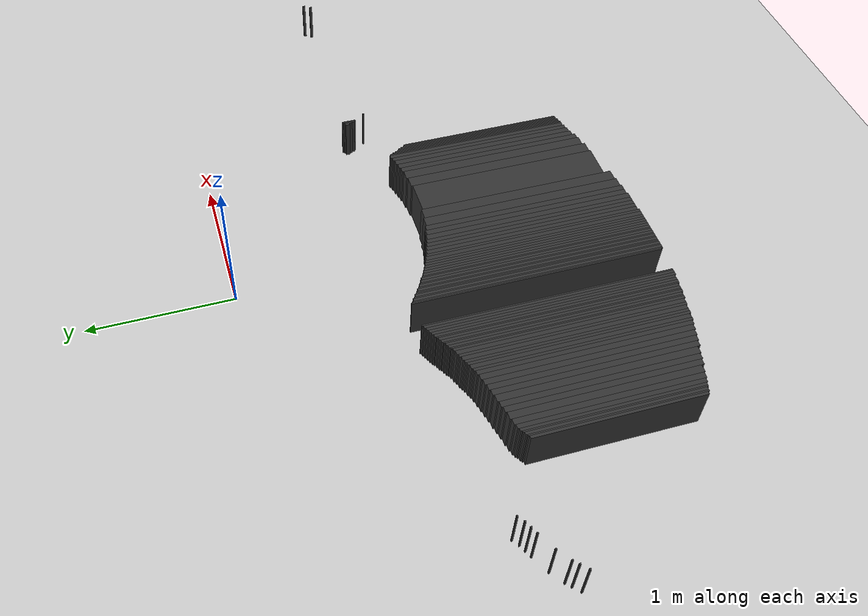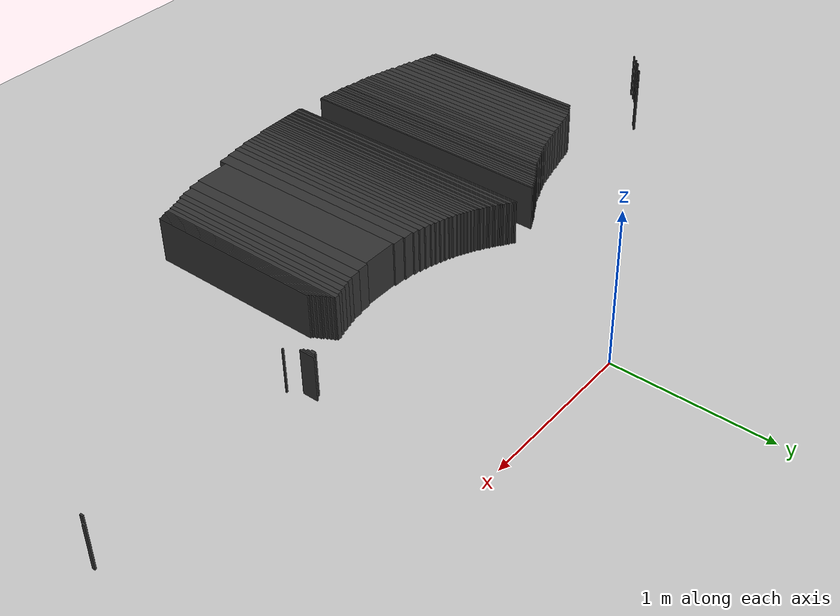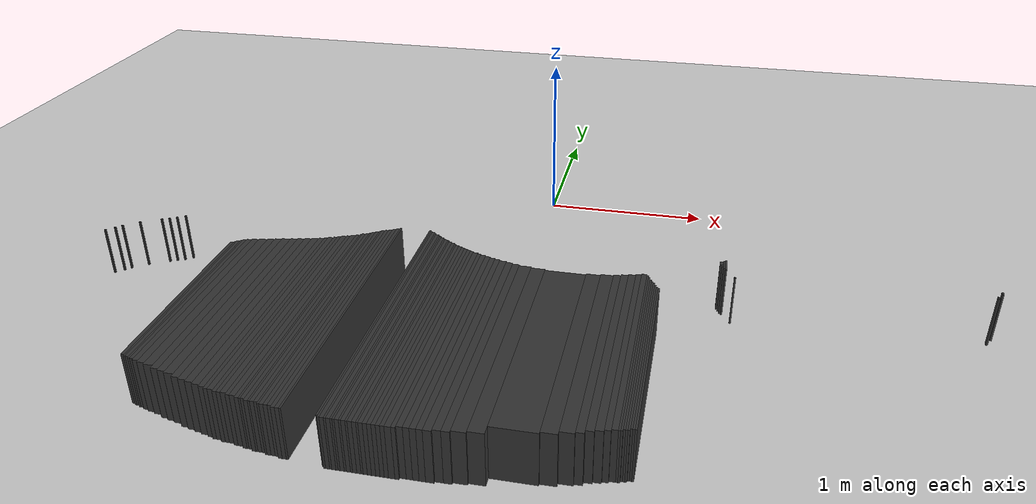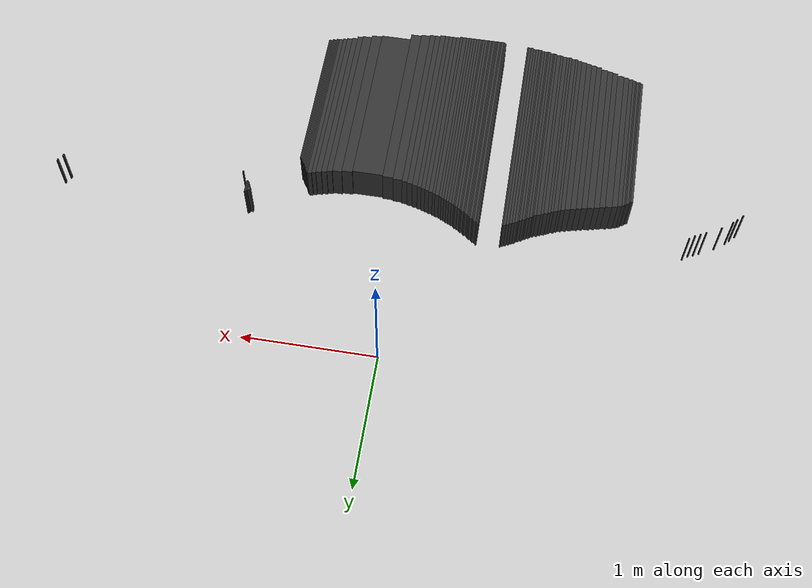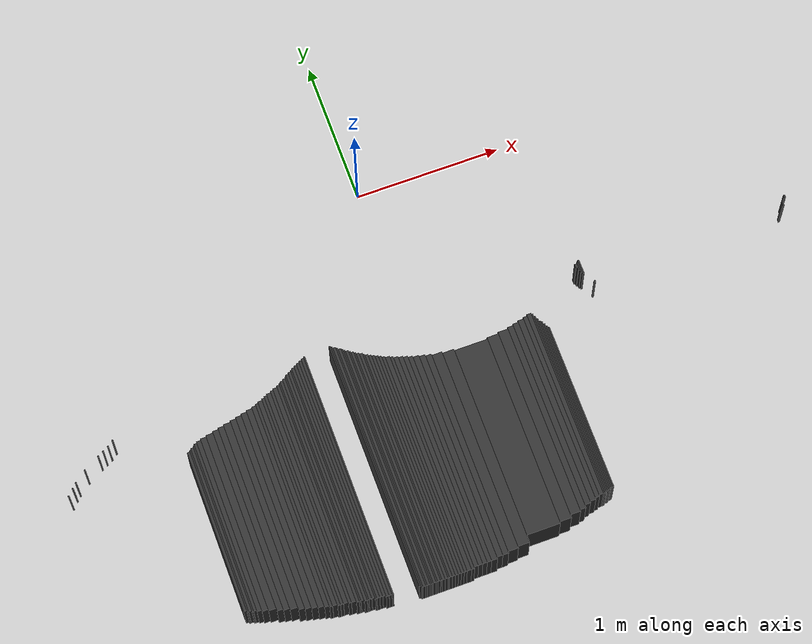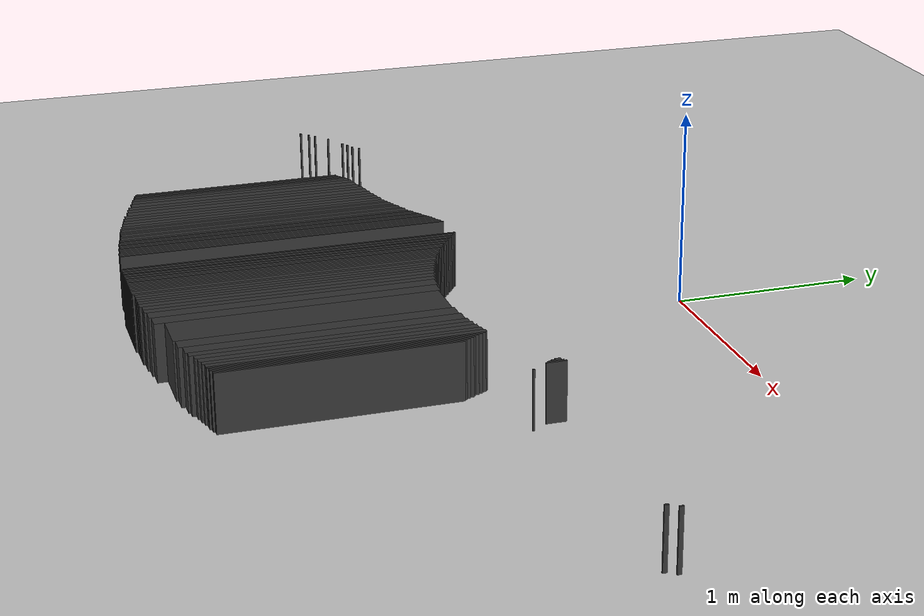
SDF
<sdf version="1.7">
 <world name="mapa_mundo">
  <model name="ground_plane">
   <static>true</static>
   <link name="link">
    <collision name="collision">
     <geometry><plane><normal>0 0 1</normal><size>10 10</size></plane></geometry>
     <surface><friction><ode><mu>100</mu><mu2>50</mu2></ode></friction></surface>
    </collision>
    <visual name="visual">
     <geometry><plane><normal>0 0 1</normal><size>10 10</size></plane></geometry>
     <material>
      <ambient>0.8 0.8 0.8 1</ambient>
      <diffuse>0.8 0.8 0.8 1</diffuse>
      <specular>0.8 0.8 0.8 1</specular>
     </material>
    </visual>
   </link>
  </model>
  <model name="wall_900">
   <static>true</static>
   <link name="link">
    <collision name="collision"><geometry><box><size>0.01 1.72 0.3</size></box></geometry></collision>
    <visual name="visual">
     <geometry><box><size>0.01 1.72 0.3</size></box></geometry>
     <material><ambient>0.2 0.2 0.2 1</ambient><diffuse>0.2 0.2 0.2 1</diffuse></material>
    </visual>
    <pose>-0.5650000000000001 -1.9000000000000001 0.15 0 0 0</pose>
   </link>
  </model>
  <model name="wall_901">
   <static>true</static>
   <link name="link">
    <collision name="collision"><geometry><box><size>0.01 0.1 0.3</size></box></geometry></collision>
    <visual name="visual">
     <geometry><box><size>0.01 0.1 0.3</size></box></geometry>
     <material><ambient>0.2 0.2 0.2 1</ambient><diffuse>0.2 0.2 0.2 1</diffuse></material>
    </visual>
    <pose>1.175 -1.09 0.15 0 0 0</pose>
   </link>
  </model>
  <model name="wall_902">
   <static>true</static>
   <link name="link">
    <collision name="collision"><geometry><box><size>0.01 1.7 0.3</size></box></geometry></collision>
    <visual name="visual">
     <geometry><box><size>0.01 1.7 0.3</size></box></geometry>
     <material><ambient>0.2 0.2 0.2 1</ambient><diffuse>0.2 0.2 0.2 1</diffuse></material>
    </visual>
    <pose>-0.745 -1.9000000000000001 0.15 0 0 0</pose>
   </link>
  </model>
  <model name="wall_903">
   <static>true</static>
   <link name="link">
    <collision name="collision"><geometry><box><size>0.01 1.72 0.3</size></box></geometry></collision>
    <visual name="visual">
     <geometry><box><size>0.01 1.72 0.3</size></box></geometry>
     <material><ambient>0.2 0.2 0.2 1</ambient><diffuse>0.2 0.2 0.2 1</diffuse></material>
    </visual>
    <pose>-0.555 -1.9100000000000001 0.15 0 0 0</pose>
   </link>
  </model>
  <model name="wall_904">
   <static>true</static>
   <link name="link">
    <collision name="collision"><geometry><box><size>0.01 0.08 0.3</size></box></geometry></collision>
    <visual name="visual">
     <geometry><box><size>0.01 0.08 0.3</size></box></geometry>
     <material><ambient>0.2 0.2 0.2 1</ambient><diffuse>0.2 0.2 0.2 1</diffuse></material>
    </visual>
    <pose>1.165 -1.09 0.15 0 0 0</pose>
   </link>
  </model>
  <model name="wall_905">
   <static>true</static>
   <link name="link">
    <collision name="collision"><geometry><box><size>0.02 1.69 0.3</size></box></geometry></collision>
    <visual name="visual">
     <geometry><box><size>0.02 1.69 0.3</size></box></geometry>
     <material><ambient>0.2 0.2 0.2 1</ambient><diffuse>0.2 0.2 0.2 1</diffuse></material>
    </visual>
    <pose>-0.76 -1.905 0.15 0 0 0</pose>
   </link>
  </model>
  <model name="wall_906">
   <static>true</static>
   <link name="link">
    <collision name="collision"><geometry><box><size>0.02 1.71 0.3</size></box></geometry></collision>
    <visual name="visual">
     <geometry><box><size>0.02 1.71 0.3</size></box></geometry>
     <material><ambient>0.2 0.2 0.2 1</ambient><diffuse>0.2 0.2 0.2 1</diffuse></material>
    </visual>
    <pose>-0.54 -1.915 0.15 0 0 0</pose>
   </link>
  </model>
  <model name="wall_907">
   <static>true</static>
   <link name="link">
    <collision name="collision"><geometry><box><size>0.02 0.03 0.3</size></box></geometry></collision>
    <visual name="visual">
     <geometry><box><size>0.02 0.03 0.3</size></box></geometry>
     <material><ambient>0.2 0.2 0.2 1</ambient><diffuse>0.2 0.2 0.2 1</diffuse></material>
    </visual>
    <pose>1.1500000000000001 -1.075 0.15 0 0 0</pose>
   </link>
  </model>
  <model name="wall_908">
   <static>true</static>
   <link name="link">
    <collision name="collision"><geometry><box><size>0.02 1.68 0.3</size></box></geometry></collision>
    <visual name="visual">
     <geometry><box><size>0.02 1.68 0.3</size></box></geometry>
     <material><ambient>0.2 0.2 0.2 1</ambient><diffuse>0.2 0.2 0.2 1</diffuse></material>
    </visual>
    <pose>-0.78 -1.9100000000000001 0.15 0 0 0</pose>
   </link>
  </model>
  <model name="wall_909">
   <static>true</static>
   <link name="link">
    <collision name="collision"><geometry><box><size>0.01 1.7 0.3</size></box></geometry></collision>
    <visual name="visual">
     <geometry><box><size>0.01 1.7 0.3</size></box></geometry>
     <material><ambient>0.2 0.2 0.2 1</ambient><diffuse>0.2 0.2 0.2 1</diffuse></material>
    </visual>
    <pose>-0.525 -1.92 0.15 0 0 0</pose>
   </link>
  </model>
  <model name="wall_910">
   <static>true</static>
   <link name="link">
    <collision name="collision">
     <geometry><box><size>0.02 1.6600000000000001 0.3</size></box></geometry>
    </collision>
    <visual name="visual">
     <geometry><box><size>0.02 1.6600000000000001 0.3</size></box></geometry>
     <material><ambient>0.2 0.2 0.2 1</ambient><diffuse>0.2 0.2 0.2 1</diffuse></material>
    </visual>
    <pose>-0.8 -1.9100000000000001 0.15 0 0 0</pose>
   </link>
  </model>
  <model name="wall_911">
   <static>true</static>
   <link name="link">
    <collision name="collision"><geometry><box><size>0.02 1.69 0.3</size></box></geometry></collision>
    <visual name="visual">
     <geometry><box><size>0.02 1.69 0.3</size></box></geometry>
     <material><ambient>0.2 0.2 0.2 1</ambient><diffuse>0.2 0.2 0.2 1</diffuse></material>
    </visual>
    <pose>-0.51 -1.925 0.15 0 0 0</pose>
   </link>
  </model>
  <model name="wall_912">
   <static>true</static>
   <link name="link">
    <collision name="collision"><geometry><box><size>0.01 0.02 0.3</size></box></geometry></collision>
    <visual name="visual">
     <geometry><box><size>0.01 0.02 0.3</size></box></geometry>
     <material><ambient>0.2 0.2 0.2 1</ambient><diffuse>0.2 0.2 0.2 1</diffuse></material>
    </visual>
    <pose>2.625 -1.09 0.15 0 0 0</pose>
   </link>
  </model>
  <model name="wall_913">
   <static>true</static>
   <link name="link">
    <collision name="collision">
     <geometry><box><size>0.02 1.6500000000000001 0.3</size></box></geometry>
    </collision>
    <visual name="visual">
     <geometry><box><size>0.02 1.6500000000000001 0.3</size></box></geometry>
     <material><ambient>0.2 0.2 0.2 1</ambient><diffuse>0.2 0.2 0.2 1</diffuse></material>
    </visual>
    <pose>-0.8200000000000001 -1.915 0.15 0 0 0</pose>
   </link>
  </model>
  <model name="wall_914">
   <static>true</static>
   <link name="link">
    <collision name="collision"><geometry><box><size>0.01 1.68 0.3</size></box></geometry></collision>
    <visual name="visual">
     <geometry><box><size>0.01 1.68 0.3</size></box></geometry>
     <material><ambient>0.2 0.2 0.2 1</ambient><diffuse>0.2 0.2 0.2 1</diffuse></material>
    </visual>
    <pose>-0.495 -1.93 0.15 0 0 0</pose>
   </link>
  </model>
  <model name="wall_915">
   <static>true</static>
   <link name="link">
    <collision name="collision"><geometry><box><size>0.01 0.02 0.3</size></box></geometry></collision>
    <visual name="visual">
     <geometry><box><size>0.01 0.02 0.3</size></box></geometry>
     <material><ambient>0.2 0.2 0.2 1</ambient><diffuse>0.2 0.2 0.2 1</diffuse></material>
    </visual>
    <pose>1.155 -1.1 0.15 0 0 0</pose>
   </link>
  </model>
  <model name="wall_916">
   <static>true</static>
   <link name="link">
    <collision name="collision">
     <geometry><box><size>0.02 1.6400000000000001 0.3</size></box></geometry>
    </collision>
    <visual name="visual">
     <geometry><box><size>0.02 1.6400000000000001 0.3</size></box></geometry>
     <material><ambient>0.2 0.2 0.2 1</ambient><diffuse>0.2 0.2 0.2 1</diffuse></material>
    </visual>
    <pose>-0.84 -1.92 0.15 0 0 0</pose>
   </link>
  </model>
  <model name="wall_917">
   <static>true</static>
   <link name="link">
    <collision name="collision"><geometry><box><size>0.01 1.67 0.3</size></box></geometry></collision>
    <visual name="visual">
     <geometry><box><size>0.01 1.67 0.3</size></box></geometry>
     <material><ambient>0.2 0.2 0.2 1</ambient><diffuse>0.2 0.2 0.2 1</diffuse></material>
    </visual>
    <pose>-0.485 -1.935 0.15 0 0 0</pose>
   </link>
  </model>
  <model name="wall_918">
   <static>true</static>
   <link name="link">
    <collision name="collision">
     <geometry><box><size>0.01 1.6300000000000001 0.3</size></box></geometry>
    </collision>
    <visual name="visual">
     <geometry><box><size>0.01 1.6300000000000001 0.3</size></box></geometry>
     <material><ambient>0.2 0.2 0.2 1</ambient><diffuse>0.2 0.2 0.2 1</diffuse></material>
    </visual>
    <pose>-0.855 -1.925 0.15 0 0 0</pose>
   </link>
  </model>
  <model name="wall_919">
   <static>true</static>
   <link name="link">
    <collision name="collision">
     <geometry><box><size>0.02 1.6600000000000001 0.3</size></box></geometry>
    </collision>
    <visual name="visual">
     <geometry><box><size>0.02 1.6600000000000001 0.3</size></box></geometry>
     <material><ambient>0.2 0.2 0.2 1</ambient><diffuse>0.2 0.2 0.2 1</diffuse></material>
    </visual>
    <pose>-0.47000000000000003 -1.94 0.15 0 0 0</pose>
   </link>
  </model>
  <model name="wall_920">
   <static>true</static>
   <link name="link">
    <collision name="collision"><geometry><box><size>0.02 1.61 0.3</size></box></geometry></collision>
    <visual name="visual">
     <geometry><box><size>0.02 1.61 0.3</size></box></geometry>
     <material><ambient>0.2 0.2 0.2 1</ambient><diffuse>0.2 0.2 0.2 1</diffuse></material>
    </visual>
    <pose>-0.87 -1.925 0.15 0 0 0</pose>
   </link>
  </model>
  <model name="wall_921">
   <static>true</static>
   <link name="link">
    <collision name="collision">
     <geometry><box><size>0.01 1.6500000000000001 0.3</size></box></geometry>
    </collision>
    <visual name="visual">
     <geometry><box><size>0.01 1.6500000000000001 0.3</size></box></geometry>
     <material><ambient>0.2 0.2 0.2 1</ambient><diffuse>0.2 0.2 0.2 1</diffuse></material>
    </visual>
    <pose>-0.455 -1.945 0.15 0 0 0</pose>
   </link>
  </model>
  <model name="wall_922">
   <static>true</static>
   <link name="link">
    <collision name="collision"><geometry><box><size>0.02 1.6 0.3</size></box></geometry></collision>
    <visual name="visual">
     <geometry><box><size>0.02 1.6 0.3</size></box></geometry>
     <material><ambient>0.2 0.2 0.2 1</ambient><diffuse>0.2 0.2 0.2 1</diffuse></material>
    </visual>
    <pose>-0.89 -1.93 0.15 0 0 0</pose>
   </link>
  </model>
  <model name="wall_923">
   <static>true</static>
   <link name="link">
    <collision name="collision">
     <geometry><box><size>0.02 1.6400000000000001 0.3</size></box></geometry>
    </collision>
    <visual name="visual">
     <geometry><box><size>0.02 1.6400000000000001 0.3</size></box></geometry>
     <material><ambient>0.2 0.2 0.2 1</ambient><diffuse>0.2 0.2 0.2 1</diffuse></material>
    </visual>
    <pose>-0.44 -1.95 0.15 0 0 0</pose>
   </link>
  </model>
  <model name="wall_924">
   <static>true</static>
   <link name="link">
    <collision name="collision"><geometry><box><size>0.01 0.02 0.3</size></box></geometry></collision>
    <visual name="visual">
     <geometry><box><size>0.01 0.02 0.3</size></box></geometry>
     <material><ambient>0.2 0.2 0.2 1</ambient><diffuse>0.2 0.2 0.2 1</diffuse></material>
    </visual>
    <pose>2.595 -1.1400000000000001 0.15 0 0 0</pose>
   </link>
  </model>
  <model name="wall_925">
   <static>true</static>
   <link name="link">
    <collision name="collision"><geometry><box><size>0.01 1.59 0.3</size></box></geometry></collision>
    <visual name="visual">
     <geometry><box><size>0.01 1.59 0.3</size></box></geometry>
     <material><ambient>0.2 0.2 0.2 1</ambient><diffuse>0.2 0.2 0.2 1</diffuse></material>
    </visual>
    <pose>-0.905 -1.935 0.15 0 0 0</pose>
   </link>
  </model>
  <model name="wall_926">
   <static>true</static>
   <link name="link">
    <collision name="collision">
     <geometry><box><size>0.01 1.6300000000000001 0.3</size></box></geometry>
    </collision>
    <visual name="visual">
     <geometry><box><size>0.01 1.6300000000000001 0.3</size></box></geometry>
     <material><ambient>0.2 0.2 0.2 1</ambient><diffuse>0.2 0.2 0.2 1</diffuse></material>
    </visual>
    <pose>-0.425 -1.955 0.15 0 0 0</pose>
   </link>
  </model>
  <model name="wall_927">
   <static>true</static>
   <link name="link">
    <collision name="collision"><geometry><box><size>0.02 1.58 0.3</size></box></geometry></collision>
    <visual name="visual">
     <geometry><box><size>0.02 1.58 0.3</size></box></geometry>
     <material><ambient>0.2 0.2 0.2 1</ambient><diffuse>0.2 0.2 0.2 1</diffuse></material>
    </visual>
    <pose>-0.92 -1.94 0.15 0 0 0</pose>
   </link>
  </model>
  <model name="wall_928">
   <static>true</static>
   <link name="link">
    <collision name="collision"><geometry><box><size>0.02 1.62 0.3</size></box></geometry></collision>
    <visual name="visual">
     <geometry><box><size>0.02 1.62 0.3</size></box></geometry>
     <material><ambient>0.2 0.2 0.2 1</ambient><diffuse>0.2 0.2 0.2 1</diffuse></material>
    </visual>
    <pose>-0.41000000000000003 -1.96 0.15 0 0 0</pose>
   </link>
  </model>
  <model name="wall_929">
   <static>true</static>
   <link name="link">
    <collision name="collision"><geometry><box><size>0.01 0.01 0.3</size></box></geometry></collision>
    <visual name="visual">
     <geometry><box><size>0.01 0.01 0.3</size></box></geometry>
     <material><ambient>0.2 0.2 0.2 1</ambient><diffuse>0.2 0.2 0.2 1</diffuse></material>
    </visual>
    <pose>-2.095 -1.165 0.15 0 0 0</pose>
   </link>
  </model>
  <model name="wall_930">
   <static>true</static>
   <link name="link">
    <collision name="collision"><geometry><box><size>0.02 1.56 0.3</size></box></geometry></collision>
    <visual name="visual">
     <geometry><box><size>0.02 1.56 0.3</size></box></geometry>
     <material><ambient>0.2 0.2 0.2 1</ambient><diffuse>0.2 0.2 0.2 1</diffuse></material>
    </visual>
    <pose>-0.9400000000000001 -1.94 0.15 0 0 0</pose>
   </link>
  </model>
  <model name="wall_931">
   <static>true</static>
   <link name="link">
    <collision name="collision"><geometry><box><size>0.02 1.61 0.3</size></box></geometry></collision>
    <visual name="visual">
     <geometry><box><size>0.02 1.61 0.3</size></box></geometry>
     <material><ambient>0.2 0.2 0.2 1</ambient><diffuse>0.2 0.2 0.2 1</diffuse></material>
    </visual>
    <pose>-0.39 -1.965 0.15 0 0 0</pose>
   </link>
  </model>
  <model name="wall_932">
   <static>true</static>
   <link name="link">
    <collision name="collision"><geometry><box><size>0.01 1.55 0.3</size></box></geometry></collision>
    <visual name="visual">
     <geometry><box><size>0.01 1.55 0.3</size></box></geometry>
     <material><ambient>0.2 0.2 0.2 1</ambient><diffuse>0.2 0.2 0.2 1</diffuse></material>
    </visual>
    <pose>-0.9550000000000001 -1.945 0.15 0 0 0</pose>
   </link>
  </model>
  <model name="wall_933">
   <static>true</static>
   <link name="link">
    <collision name="collision"><geometry><box><size>0.01 1.6 0.3</size></box></geometry></collision>
    <visual name="visual">
     <geometry><box><size>0.01 1.6 0.3</size></box></geometry>
     <material><ambient>0.2 0.2 0.2 1</ambient><diffuse>0.2 0.2 0.2 1</diffuse></material>
    </visual>
    <pose>-0.375 -1.97 0.15 0 0 0</pose>
   </link>
  </model>
  <model name="wall_934">
   <static>true</static>
   <link name="link">
    <collision name="collision"><geometry><box><size>0.02 1.54 0.3</size></box></geometry></collision>
    <visual name="visual">
     <geometry><box><size>0.02 1.54 0.3</size></box></geometry>
     <material><ambient>0.2 0.2 0.2 1</ambient><diffuse>0.2 0.2 0.2 1</diffuse></material>
    </visual>
    <pose>-0.97 -1.95 0.15 0 0 0</pose>
   </link>
  </model>
  <model name="wall_935">
   <static>true</static>
   <link name="link">
    <collision name="collision"><geometry><box><size>0.02 1.59 0.3</size></box></geometry></collision>
    <visual name="visual">
     <geometry><box><size>0.02 1.59 0.3</size></box></geometry>
     <material><ambient>0.2 0.2 0.2 1</ambient><diffuse>0.2 0.2 0.2 1</diffuse></material>
    </visual>
    <pose>-0.36 -1.975 0.15 0 0 0</pose>
   </link>
  </model>
  <model name="wall_936">
   <static>true</static>
   <link name="link">
    <collision name="collision"><geometry><box><size>0.01 0.01 0.3</size></box></geometry></collision>
    <visual name="visual">
     <geometry><box><size>0.01 0.01 0.3</size></box></geometry>
     <material><ambient>0.2 0.2 0.2 1</ambient><diffuse>0.2 0.2 0.2 1</diffuse></material>
    </visual>
    <pose>-2.1350000000000002 -1.195 0.15 0 0 0</pose>
   </link>
  </model>
  <model name="wall_937">
   <static>true</static>
   <link name="link">
    <collision name="collision"><geometry><box><size>0.03 1.52 0.3</size></box></geometry></collision>
    <visual name="visual">
     <geometry><box><size>0.03 1.52 0.3</size></box></geometry>
     <material><ambient>0.2 0.2 0.2 1</ambient><diffuse>0.2 0.2 0.2 1</diffuse></material>
    </visual>
    <pose>-0.995 -1.95 0.15 0 0 0</pose>
   </link>
  </model>
  <model name="wall_938">
   <static>true</static>
   <link name="link">
    <collision name="collision"><geometry><box><size>0.02 1.58 0.3</size></box></geometry></collision>
    <visual name="visual">
     <geometry><box><size>0.02 1.58 0.3</size></box></geometry>
     <material><ambient>0.2 0.2 0.2 1</ambient><diffuse>0.2 0.2 0.2 1</diffuse></material>
    </visual>
    <pose>-0.34 -1.98 0.15 0 0 0</pose>
   </link>
  </model>
  <model name="wall_939">
   <static>true</static>
   <link name="link">
    <collision name="collision"><geometry><box><size>0.02 1.51 0.3</size></box></geometry></collision>
    <visual name="visual">
     <geometry><box><size>0.02 1.51 0.3</size></box></geometry>
     <material><ambient>0.2 0.2 0.2 1</ambient><diffuse>0.2 0.2 0.2 1</diffuse></material>
    </visual>
    <pose>-1.02 -1.955 0.15 0 0 0</pose>
   </link>
  </model>
  <model name="wall_940">
   <static>true</static>
   <link name="link">
    <collision name="collision"><geometry><box><size>0.02 1.57 0.3</size></box></geometry></collision>
    <visual name="visual">
     <geometry><box><size>0.02 1.57 0.3</size></box></geometry>
     <material><ambient>0.2 0.2 0.2 1</ambient><diffuse>0.2 0.2 0.2 1</diffuse></material>
    </visual>
    <pose>-0.32 -1.985 0.15 0 0 0</pose>
   </link>
  </model>
  <model name="wall_941">
   <static>true</static>
   <link name="link">
    <collision name="collision"><geometry><box><size>0.01 0.01 0.3</size></box></geometry></collision>
    <visual name="visual">
     <geometry><box><size>0.01 0.01 0.3</size></box></geometry>
     <material><ambient>0.2 0.2 0.2 1</ambient><diffuse>0.2 0.2 0.2 1</diffuse></material>
    </visual>
    <pose>-2.1750000000000003 -1.215 0.15 0 0 0</pose>
   </link>
  </model>
  <model name="wall_942">
   <static>true</static>
   <link name="link">
    <collision name="collision"><geometry><box><size>0.03 1.49 0.3</size></box></geometry></collision>
    <visual name="visual">
     <geometry><box><size>0.03 1.49 0.3</size></box></geometry>
     <material><ambient>0.2 0.2 0.2 1</ambient><diffuse>0.2 0.2 0.2 1</diffuse></material>
    </visual>
    <pose>-1.045 -1.955 0.15 0 0 0</pose>
   </link>
  </model>
  <model name="wall_943">
   <static>true</static>
   <link name="link">
    <collision name="collision"><geometry><box><size>0.02 1.56 0.3</size></box></geometry></collision>
    <visual name="visual">
     <geometry><box><size>0.02 1.56 0.3</size></box></geometry>
     <material><ambient>0.2 0.2 0.2 1</ambient><diffuse>0.2 0.2 0.2 1</diffuse></material>
    </visual>
    <pose>-0.3 -1.99 0.15 0 0 0</pose>
   </link>
  </model>
  <model name="wall_944">
   <static>true</static>
   <link name="link">
    <collision name="collision"><geometry><box><size>0.01 0.01 0.3</size></box></geometry></collision>
    <visual name="visual">
     <geometry><box><size>0.01 0.01 0.3</size></box></geometry>
     <material><ambient>0.2 0.2 0.2 1</ambient><diffuse>0.2 0.2 0.2 1</diffuse></material>
    </visual>
    <pose>1.225 -1.215 0.15 0 0 0</pose>
   </link>
  </model>
  <model name="wall_945">
   <static>true</static>
   <link name="link">
    <collision name="collision"><geometry><box><size>0.02 1.48 0.3</size></box></geometry></collision>
    <visual name="visual">
     <geometry><box><size>0.02 1.48 0.3</size></box></geometry>
     <material><ambient>0.2 0.2 0.2 1</ambient><diffuse>0.2 0.2 0.2 1</diffuse></material>
    </visual>
    <pose>-1.07 -1.96 0.15 0 0 0</pose>
   </link>
  </model>
  <model name="wall_946">
   <static>true</static>
   <link name="link">
    <collision name="collision"><geometry><box><size>0.02 1.55 0.3</size></box></geometry></collision>
    <visual name="visual">
     <geometry><box><size>0.02 1.55 0.3</size></box></geometry>
     <material><ambient>0.2 0.2 0.2 1</ambient><diffuse>0.2 0.2 0.2 1</diffuse></material>
    </visual>
    <pose>-0.28 -1.995 0.15 0 0 0</pose>
   </link>
  </model>
  <model name="wall_947">
   <static>true</static>
   <link name="link">
    <collision name="collision"><geometry><box><size>0.01 0.01 0.3</size></box></geometry></collision>
    <visual name="visual">
     <geometry><box><size>0.01 0.01 0.3</size></box></geometry>
     <material><ambient>0.2 0.2 0.2 1</ambient><diffuse>0.2 0.2 0.2 1</diffuse></material>
    </visual>
    <pose>-2.215 -1.235 0.15 0 0 0</pose>
   </link>
  </model>
  <model name="wall_948">
   <static>true</static>
   <link name="link">
    <collision name="collision"><geometry><box><size>0.02 1.47 0.3</size></box></geometry></collision>
    <visual name="visual">
     <geometry><box><size>0.02 1.47 0.3</size></box></geometry>
     <material><ambient>0.2 0.2 0.2 1</ambient><diffuse>0.2 0.2 0.2 1</diffuse></material>
    </visual>
    <pose>-1.09 -1.965 0.15 0 0 0</pose>
   </link>
  </model>
  <model name="wall_949">
   <static>true</static>
   <link name="link">
    <collision name="collision"><geometry><box><size>0.02 1.54 0.3</size></box></geometry></collision>
    <visual name="visual">
     <geometry><box><size>0.02 1.54 0.3</size></box></geometry>
     <material><ambient>0.2 0.2 0.2 1</ambient><diffuse>0.2 0.2 0.2 1</diffuse></material>
    </visual>
    <pose>-0.26 -2.0 0.15 0 0 0</pose>
   </link>
  </model>
  <model name="wall_950">
   <static>true</static>
   <link name="link">
    <collision name="collision"><geometry><box><size>0.03 1.45 0.3</size></box></geometry></collision>
    <visual name="visual">
     <geometry><box><size>0.03 1.45 0.3</size></box></geometry>
     <material><ambient>0.2 0.2 0.2 1</ambient><diffuse>0.2 0.2 0.2 1</diffuse></material>
    </visual>
    <pose>-1.115 -1.965 0.15 0 0 0</pose>
   </link>
  </model>
  <model name="wall_951">
   <static>true</static>
   <link name="link">
    <collision name="collision"><geometry><box><size>0.03 1.53 0.3</size></box></geometry></collision>
    <visual name="visual">
     <geometry><box><size>0.03 1.53 0.3</size></box></geometry>
     <material><ambient>0.2 0.2 0.2 1</ambient><diffuse>0.2 0.2 0.2 1</diffuse></material>
    </visual>
    <pose>-0.23500000000000001 -2.005 0.15 0 0 0</pose>
   </link>
  </model>
  <model name="wall_952">
   <static>true</static>
   <link name="link">
    <collision name="collision"><geometry><box><size>0.02 1.44 0.3</size></box></geometry></collision>
    <visual name="visual">
     <geometry><box><size>0.02 1.44 0.3</size></box></geometry>
     <material><ambient>0.2 0.2 0.2 1</ambient><diffuse>0.2 0.2 0.2 1</diffuse></material>
    </visual>
    <pose>-1.1400000000000001 -1.97 0.15 0 0 0</pose>
   </link>
  </model>
  <model name="wall_953">
   <static>true</static>
   <link name="link">
    <collision name="collision"><geometry><box><size>0.02 1.52 0.3</size></box></geometry></collision>
    <visual name="visual">
     <geometry><box><size>0.02 1.52 0.3</size></box></geometry>
     <material><ambient>0.2 0.2 0.2 1</ambient><diffuse>0.2 0.2 0.2 1</diffuse></material>
    </visual>
    <pose>-0.21 -2.0100000000000002 0.15 0 0 0</pose>
   </link>
  </model>
  <model name="wall_954">
   <static>true</static>
   <link name="link">
    <collision name="collision"><geometry><box><size>0.03 1.42 0.3</size></box></geometry></collision>
    <visual name="visual">
     <geometry><box><size>0.03 1.42 0.3</size></box></geometry>
     <material><ambient>0.2 0.2 0.2 1</ambient><diffuse>0.2 0.2 0.2 1</diffuse></material>
    </visual>
    <pose>-1.165 -1.97 0.15 0 0 0</pose>
   </link>
  </model>
  <model name="wall_955">
   <static>true</static>
   <link name="link">
    <collision name="collision"><geometry><box><size>0.03 1.5 0.3</size></box></geometry></collision>
    <visual name="visual">
     <geometry><box><size>0.03 1.5 0.3</size></box></geometry>
     <material><ambient>0.2 0.2 0.2 1</ambient><diffuse>0.2 0.2 0.2 1</diffuse></material>
    </visual>
    <pose>-0.185 -2.0100000000000002 0.15 0 0 0</pose>
   </link>
  </model>
  <model name="wall_956">
   <static>true</static>
   <link name="link">
    <collision name="collision">
     <geometry><box><size>0.04 1.4000000000000001 0.3</size></box></geometry>
    </collision>
    <visual name="visual">
     <geometry><box><size>0.04 1.4000000000000001 0.3</size></box></geometry>
     <material><ambient>0.2 0.2 0.2 1</ambient><diffuse>0.2 0.2 0.2 1</diffuse></material>
    </visual>
    <pose>-1.2 -1.97 0.15 0 0 0</pose>
   </link>
  </model>
  <model name="wall_957">
   <static>true</static>
   <link name="link">
    <collision name="collision"><geometry><box><size>0.03 1.49 0.3</size></box></geometry></collision>
    <visual name="visual">
     <geometry><box><size>0.03 1.49 0.3</size></box></geometry>
     <material><ambient>0.2 0.2 0.2 1</ambient><diffuse>0.2 0.2 0.2 1</diffuse></material>
    </visual>
    <pose>-0.155 -2.015 0.15 0 0 0</pose>
   </link>
  </model>
  <model name="wall_958">
   <static>true</static>
   <link name="link">
    <collision name="collision">
     <geometry><box><size>0.04 1.3800000000000001 0.3</size></box></geometry>
    </collision>
    <visual name="visual">
     <geometry><box><size>0.04 1.3800000000000001 0.3</size></box></geometry>
     <material><ambient>0.2 0.2 0.2 1</ambient><diffuse>0.2 0.2 0.2 1</diffuse></material>
    </visual>
    <pose>-1.24 -1.97 0.15 0 0 0</pose>
   </link>
  </model>
  <model name="wall_959">
   <static>true</static>
   <link name="link">
    <collision name="collision"><geometry><box><size>0.03 1.48 0.3</size></box></geometry></collision>
    <visual name="visual">
     <geometry><box><size>0.03 1.48 0.3</size></box></geometry>
     <material><ambient>0.2 0.2 0.2 1</ambient><diffuse>0.2 0.2 0.2 1</diffuse></material>
    </visual>
    <pose>-0.125 -2.02 0.15 0 0 0</pose>
   </link>
  </model>
  <model name="wall_960">
   <static>true</static>
   <link name="link">
    <collision name="collision"><geometry><box><size>0.03 1.31 0.3</size></box></geometry></collision>
    <visual name="visual">
     <geometry><box><size>0.03 1.31 0.3</size></box></geometry>
     <material><ambient>0.2 0.2 0.2 1</ambient><diffuse>0.2 0.2 0.2 1</diffuse></material>
    </visual>
    <pose>0.735 -1.935 0.15 0 0 0</pose>
   </link>
  </model>
  <model name="wall_961">
   <static>true</static>
   <link name="link">
    <collision name="collision"><geometry><box><size>0.01 0.01 0.3</size></box></geometry></collision>
    <visual name="visual">
     <geometry><box><size>0.01 0.01 0.3</size></box></geometry>
     <material><ambient>0.2 0.2 0.2 1</ambient><diffuse>0.2 0.2 0.2 1</diffuse></material>
    </visual>
    <pose>-2.325 -1.295 0.15 0 0 0</pose>
   </link>
  </model>
  <model name="wall_962">
   <static>true</static>
   <link name="link">
    <collision name="collision"><geometry><box><size>0.04 1.36 0.3</size></box></geometry></collision>
    <visual name="visual">
     <geometry><box><size>0.04 1.36 0.3</size></box></geometry>
     <material><ambient>0.2 0.2 0.2 1</ambient><diffuse>0.2 0.2 0.2 1</diffuse></material>
    </visual>
    <pose>-1.28 -1.97 0.15 0 0 0</pose>
   </link>
  </model>
  <model name="wall_963">
   <static>true</static>
   <link name="link">
    <collision name="collision"><geometry><box><size>0.03 1.47 0.3</size></box></geometry></collision>
    <visual name="visual">
     <geometry><box><size>0.03 1.47 0.3</size></box></geometry>
     <material><ambient>0.2 0.2 0.2 1</ambient><diffuse>0.2 0.2 0.2 1</diffuse></material>
    </visual>
    <pose>-0.095 -2.025 0.15 0 0 0</pose>
   </link>
  </model>
  <model name="wall_964">
   <static>true</static>
   <link name="link">
    <collision name="collision"><geometry><box><size>0.03 1.31 0.3</size></box></geometry></collision>
    <visual name="visual">
     <geometry><box><size>0.03 1.31 0.3</size></box></geometry>
     <material><ambient>0.2 0.2 0.2 1</ambient><diffuse>0.2 0.2 0.2 1</diffuse></material>
    </visual>
    <pose>0.705 -1.945 0.15 0 0 0</pose>
   </link>
  </model>
  <model name="wall_965">
   <static>true</static>
   <link name="link">
    <collision name="collision"><geometry><box><size>0.01 1.3 0.3</size></box></geometry></collision>
    <visual name="visual">
     <geometry><box><size>0.01 1.3 0.3</size></box></geometry>
     <material><ambient>0.2 0.2 0.2 1</ambient><diffuse>0.2 0.2 0.2 1</diffuse></material>
    </visual>
    <pose>0.755 -1.94 0.15 0 0 0</pose>
   </link>
  </model>
  <model name="wall_966">
   <static>true</static>
   <link name="link">
    <collision name="collision"><geometry><box><size>0.04 1.34 0.3</size></box></geometry></collision>
    <visual name="visual">
     <geometry><box><size>0.04 1.34 0.3</size></box></geometry>
     <material><ambient>0.2 0.2 0.2 1</ambient><diffuse>0.2 0.2 0.2 1</diffuse></material>
    </visual>
    <pose>-1.32 -1.97 0.15 0 0 0</pose>
   </link>
  </model>
  <model name="wall_967">
   <static>true</static>
   <link name="link">
    <collision name="collision"><geometry><box><size>0.04 1.46 0.3</size></box></geometry></collision>
    <visual name="visual">
     <geometry><box><size>0.04 1.46 0.3</size></box></geometry>
     <material><ambient>0.2 0.2 0.2 1</ambient><diffuse>0.2 0.2 0.2 1</diffuse></material>
    </visual>
    <pose>-0.06 -2.0300000000000002 0.15 0 0 0</pose>
   </link>
  </model>
  <model name="wall_968">
   <static>true</static>
   <link name="link">
    <collision name="collision"><geometry><box><size>0.04 1.31 0.3</size></box></geometry></collision>
    <visual name="visual">
     <geometry><box><size>0.04 1.31 0.3</size></box></geometry>
     <material><ambient>0.2 0.2 0.2 1</ambient><diffuse>0.2 0.2 0.2 1</diffuse></material>
    </visual>
    <pose>0.67 -1.955 0.15 0 0 0</pose>
   </link>
  </model>
  <model name="wall_969">
   <static>true</static>
   <link name="link">
    <collision name="collision"><geometry><box><size>0.05 1.31 0.3</size></box></geometry></collision>
    <visual name="visual">
     <geometry><box><size>0.05 1.31 0.3</size></box></geometry>
     <material><ambient>0.2 0.2 0.2 1</ambient><diffuse>0.2 0.2 0.2 1</diffuse></material>
    </visual>
    <pose>-1.365 -1.965 0.15 0 0 0</pose>
   </link>
  </model>
  <model name="wall_970">
   <static>true</static>
   <link name="link">
    <collision name="collision"><geometry><box><size>0.04 1.44 0.3</size></box></geometry></collision>
    <visual name="visual">
     <geometry><box><size>0.04 1.44 0.3</size></box></geometry>
     <material><ambient>0.2 0.2 0.2 1</ambient><diffuse>0.2 0.2 0.2 1</diffuse></material>
    </visual>
    <pose>-0.02 -2.0300000000000002 0.15 0 0 0</pose>
   </link>
  </model>
  <model name="wall_971">
   <static>true</static>
   <link name="link">
    <collision name="collision"><geometry><box><size>0.04 1.31 0.3</size></box></geometry></collision>
    <visual name="visual">
     <geometry><box><size>0.04 1.31 0.3</size></box></geometry>
     <material><ambient>0.2 0.2 0.2 1</ambient><diffuse>0.2 0.2 0.2 1</diffuse></material>
    </visual>
    <pose>0.63 -1.965 0.15 0 0 0</pose>
   </link>
  </model>
  <model name="wall_972">
   <static>true</static>
   <link name="link">
    <collision name="collision"><geometry><box><size>0.01 1.28 0.3</size></box></geometry></collision>
    <visual name="visual">
     <geometry><box><size>0.01 1.28 0.3</size></box></geometry>
     <material><ambient>0.2 0.2 0.2 1</ambient><diffuse>0.2 0.2 0.2 1</diffuse></material>
    </visual>
    <pose>0.765 -1.95 0.15 0 0 0</pose>
   </link>
  </model>
  <model name="wall_973">
   <static>true</static>
   <link name="link">
    <collision name="collision"><geometry><box><size>0.04 1.29 0.3</size></box></geometry></collision>
    <visual name="visual">
     <geometry><box><size>0.04 1.29 0.3</size></box></geometry>
     <material><ambient>0.2 0.2 0.2 1</ambient><diffuse>0.2 0.2 0.2 1</diffuse></material>
    </visual>
    <pose>-1.41 -1.965 0.15 0 0 0</pose>
   </link>
  </model>
  <model name="wall_974">
   <static>true</static>
   <link name="link">
    <collision name="collision"><geometry><box><size>0.04 1.43 0.3</size></box></geometry></collision>
    <visual name="visual">
     <geometry><box><size>0.04 1.43 0.3</size></box></geometry>
     <material><ambient>0.2 0.2 0.2 1</ambient><diffuse>0.2 0.2 0.2 1</diffuse></material>
    </visual>
    <pose>0.02 -2.035 0.15 0 0 0</pose>
   </link>
  </model>
  <model name="wall_975">
   <static>true</static>
   <link name="link">
    <collision name="collision"><geometry><box><size>0.04 1.32 0.3</size></box></geometry></collision>
    <visual name="visual">
     <geometry><box><size>0.04 1.32 0.3</size></box></geometry>
     <material><ambient>0.2 0.2 0.2 1</ambient><diffuse>0.2 0.2 0.2 1</diffuse></material>
    </visual>
    <pose>0.59 -1.98 0.15 0 0 0</pose>
   </link>
  </model>
  <model name="wall_976">
   <static>true</static>
   <link name="link">
    <collision name="collision"><geometry><box><size>0.04 1.27 0.3</size></box></geometry></collision>
    <visual name="visual">
     <geometry><box><size>0.04 1.27 0.3</size></box></geometry>
     <material><ambient>0.2 0.2 0.2 1</ambient><diffuse>0.2 0.2 0.2 1</diffuse></material>
    </visual>
    <pose>-1.45 -1.965 0.15 0 0 0</pose>
   </link>
  </model>
  <model name="wall_977">
   <static>true</static>
   <link name="link">
    <collision name="collision"><geometry><box><size>0.07 1.41 0.3</size></box></geometry></collision>
    <visual name="visual">
     <geometry><box><size>0.07 1.41 0.3</size></box></geometry>
     <material><ambient>0.2 0.2 0.2 1</ambient><diffuse>0.2 0.2 0.2 1</diffuse></material>
    </visual>
    <pose>0.075 -2.035 0.15 0 0 0</pose>
   </link>
  </model>
  <model name="wall_978">
   <static>true</static>
   <link name="link">
    <collision name="collision"><geometry><box><size>0.07 1.32 0.3</size></box></geometry></collision>
    <visual name="visual">
     <geometry><box><size>0.07 1.32 0.3</size></box></geometry>
     <material><ambient>0.2 0.2 0.2 1</ambient><diffuse>0.2 0.2 0.2 1</diffuse></material>
    </visual>
    <pose>0.535 -1.99 0.15 0 0 0</pose>
   </link>
  </model>
  <model name="wall_979">
   <static>true</static>
   <link name="link">
    <collision name="collision"><geometry><box><size>0.01 1.25 0.3</size></box></geometry></collision>
    <visual name="visual">
     <geometry><box><size>0.01 1.25 0.3</size></box></geometry>
     <material><ambient>0.2 0.2 0.2 1</ambient><diffuse>0.2 0.2 0.2 1</diffuse></material>
    </visual>
    <pose>0.775 -1.955 0.15 0 0 0</pose>
   </link>
  </model>
  <model name="wall_980">
   <static>true</static>
   <link name="link">
    <collision name="collision"><geometry><box><size>0.05 1.24 0.3</size></box></geometry></collision>
    <visual name="visual">
     <geometry><box><size>0.05 1.24 0.3</size></box></geometry>
     <material><ambient>0.2 0.2 0.2 1</ambient><diffuse>0.2 0.2 0.2 1</diffuse></material>
    </visual>
    <pose>-1.495 -1.96 0.15 0 0 0</pose>
   </link>
  </model>
  <model name="wall_981">
   <static>true</static>
   <link name="link">
    <collision name="collision">
     <geometry><box><size>0.08 1.3900000000000001 0.3</size></box></geometry>
    </collision>
    <visual name="visual">
     <geometry><box><size>0.08 1.3900000000000001 0.3</size></box></geometry>
     <material><ambient>0.2 0.2 0.2 1</ambient><diffuse>0.2 0.2 0.2 1</diffuse></material>
    </visual>
    <pose>0.15 -2.035 0.15 0 0 0</pose>
   </link>
  </model>
  <model name="wall_982">
   <static>true</static>
   <link name="link">
    <collision name="collision"><geometry><box><size>0.08 1.33 0.3</size></box></geometry></collision>
    <visual name="visual">
     <geometry><box><size>0.08 1.33 0.3</size></box></geometry>
     <material><ambient>0.2 0.2 0.2 1</ambient><diffuse>0.2 0.2 0.2 1</diffuse></material>
    </visual>
    <pose>0.46 -2.005 0.15 0 0 0</pose>
   </link>
  </model>
  <model name="wall_983">
   <static>true</static>
   <link name="link">
    <collision name="collision"><geometry><box><size>0.01 0.01 0.3</size></box></geometry></collision>
    <visual name="visual">
     <geometry><box><size>0.01 0.01 0.3</size></box></geometry>
     <material><ambient>0.2 0.2 0.2 1</ambient><diffuse>0.2 0.2 0.2 1</diffuse></material>
    </visual>
    <pose>-2.4050000000000002 -1.355 0.15 0 0 0</pose>
   </link>
  </model>
  <model name="wall_984">
   <static>true</static>
   <link name="link">
    <collision name="collision"><geometry><box><size>0.04 1.22 0.3</size></box></geometry></collision>
    <visual name="visual">
     <geometry><box><size>0.04 1.22 0.3</size></box></geometry>
     <material><ambient>0.2 0.2 0.2 1</ambient><diffuse>0.2 0.2 0.2 1</diffuse></material>
    </visual>
    <pose>-1.54 -1.96 0.15 0 0 0</pose>
   </link>
  </model>
  <model name="wall_985">
   <static>true</static>
   <link name="link">
    <collision name="collision"><geometry><box><size>0.23 1.33 0.3</size></box></geometry></collision>
    <visual name="visual">
     <geometry><box><size>0.23 1.33 0.3</size></box></geometry>
     <material><ambient>0.2 0.2 0.2 1</ambient><diffuse>0.2 0.2 0.2 1</diffuse></material>
    </visual>
    <pose>0.305 -2.015 0.15 0 0 0</pose>
   </link>
  </model>
  <model name="wall_986">
   <static>true</static>
   <link name="link">
    <collision name="collision"><geometry><box><size>0.01 1.23 0.3</size></box></geometry></collision>
    <visual name="visual">
     <geometry><box><size>0.01 1.23 0.3</size></box></geometry>
     <material><ambient>0.2 0.2 0.2 1</ambient><diffuse>0.2 0.2 0.2 1</diffuse></material>
    </visual>
    <pose>0.785 -1.965 0.15 0 0 0</pose>
   </link>
  </model>
  <model name="wall_987">
   <static>true</static>
   <link name="link">
    <collision name="collision"><geometry><box><size>0.03 1.2 0.3</size></box></geometry></collision>
    <visual name="visual">
     <geometry><box><size>0.03 1.2 0.3</size></box></geometry>
     <material><ambient>0.2 0.2 0.2 1</ambient><diffuse>0.2 0.2 0.2 1</diffuse></material>
    </visual>
    <pose>-1.575 -1.96 0.15 0 0 0</pose>
   </link>
  </model>
  <model name="wall_988">
   <static>true</static>
   <link name="link">
    <collision name="collision"><geometry><box><size>0.01 1.22 0.3</size></box></geometry></collision>
    <visual name="visual">
     <geometry><box><size>0.01 1.22 0.3</size></box></geometry>
     <material><ambient>0.2 0.2 0.2 1</ambient><diffuse>0.2 0.2 0.2 1</diffuse></material>
    </visual>
    <pose>0.795 -1.97 0.15 0 0 0</pose>
   </link>
  </model>
  <model name="wall_989">
   <static>true</static>
   <link name="link">
    <collision name="collision"><geometry><box><size>0.02 1.18 0.3</size></box></geometry></collision>
    <visual name="visual">
     <geometry><box><size>0.02 1.18 0.3</size></box></geometry>
     <material><ambient>0.2 0.2 0.2 1</ambient><diffuse>0.2 0.2 0.2 1</diffuse></material>
    </visual>
    <pose>-1.6 -1.96 0.15 0 0 0</pose>
   </link>
  </model>
  <model name="wall_990">
   <static>true</static>
   <link name="link">
    <collision name="collision"><geometry><box><size>0.01 0.01 0.3</size></box></geometry></collision>
    <visual name="visual">
     <geometry><box><size>0.01 0.01 0.3</size></box></geometry>
     <material><ambient>0.2 0.2 0.2 1</ambient><diffuse>0.2 0.2 0.2 1</diffuse></material>
    </visual>
    <pose>-2.435 -1.385 0.15 0 0 0</pose>
   </link>
  </model>
  <model name="wall_991">
   <static>true</static>
   <link name="link">
    <collision name="collision"><geometry><box><size>0.01 1.17 0.3</size></box></geometry></collision>
    <visual name="visual">
     <geometry><box><size>0.01 1.17 0.3</size></box></geometry>
     <material><ambient>0.2 0.2 0.2 1</ambient><diffuse>0.2 0.2 0.2 1</diffuse></material>
    </visual>
    <pose>-1.615 -1.965 0.15 0 0 0</pose>
   </link>
  </model>
  <model name="wall_992">
   <static>true</static>
   <link name="link">
    <collision name="collision"><geometry><box><size>0.01 1.19 0.3</size></box></geometry></collision>
    <visual name="visual">
     <geometry><box><size>0.01 1.19 0.3</size></box></geometry>
     <material><ambient>0.2 0.2 0.2 1</ambient><diffuse>0.2 0.2 0.2 1</diffuse></material>
    </visual>
    <pose>0.805 -1.975 0.15 0 0 0</pose>
   </link>
  </model>
  <model name="wall_993">
   <static>true</static>
   <link name="link">
    <collision name="collision">
     <geometry><box><size>0.02 1.1500000000000001 0.3</size></box></geometry>
    </collision>
    <visual name="visual">
     <geometry><box><size>0.02 1.1500000000000001 0.3</size></box></geometry>
     <material><ambient>0.2 0.2 0.2 1</ambient><diffuse>0.2 0.2 0.2 1</diffuse></material>
    </visual>
    <pose>-1.6300000000000001 -1.965 0.15 0 0 0</pose>
   </link>
  </model>
  <model name="wall_994">
   <static>true</static>
   <link name="link">
    <collision name="collision">
     <geometry><box><size>0.01 1.1400000000000001 0.3</size></box></geometry>
    </collision>
    <visual name="visual">
     <geometry><box><size>0.01 1.1400000000000001 0.3</size></box></geometry>
     <material><ambient>0.2 0.2 0.2 1</ambient><diffuse>0.2 0.2 0.2 1</diffuse></material>
    </visual>
    <pose>-1.645 -1.97 0.15 0 0 0</pose>
   </link>
  </model>
  <model name="wall_995">
   <static>true</static>
   <link name="link">
    <collision name="collision"><geometry><box><size>0.01 1.17 0.3</size></box></geometry></collision>
    <visual name="visual">
     <geometry><box><size>0.01 1.17 0.3</size></box></geometry>
     <material><ambient>0.2 0.2 0.2 1</ambient><diffuse>0.2 0.2 0.2 1</diffuse></material>
    </visual>
    <pose>0.8150000000000001 -1.985 0.15 0 0 0</pose>
   </link>
  </model>
  <model name="wall_996">
   <static>true</static>
   <link name="link">
    <collision name="collision"><geometry><box><size>0.02 1.12 0.3</size></box></geometry></collision>
    <visual name="visual">
     <geometry><box><size>0.02 1.12 0.3</size></box></geometry>
     <material><ambient>0.2 0.2 0.2 1</ambient><diffuse>0.2 0.2 0.2 1</diffuse></material>
    </visual>
    <pose>-1.6600000000000001 -1.97 0.15 0 0 0</pose>
   </link>
  </model>
  <model name="wall_997">
   <static>true</static>
   <link name="link">
    <collision name="collision"><geometry><box><size>0.01 1.16 0.3</size></box></geometry></collision>
    <visual name="visual">
     <geometry><box><size>0.01 1.16 0.3</size></box></geometry>
     <material><ambient>0.2 0.2 0.2 1</ambient><diffuse>0.2 0.2 0.2 1</diffuse></material>
    </visual>
    <pose>0.8250000000000001 -1.99 0.15 0 0 0</pose>
   </link>
  </model>
  <model name="wall_998">
   <static>true</static>
   <link name="link">
    <collision name="collision"><geometry><box><size>0.01 0.01 0.3</size></box></geometry></collision>
    <visual name="visual">
     <geometry><box><size>0.01 0.01 0.3</size></box></geometry>
     <material><ambient>0.2 0.2 0.2 1</ambient><diffuse>0.2 0.2 0.2 1</diffuse></material>
    </visual>
    <pose>-2.475 -1.425 0.15 0 0 0</pose>
   </link>
  </model>
 </world>
</sdf>
